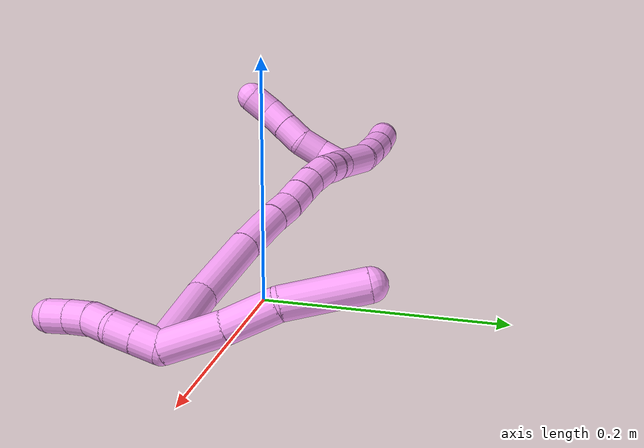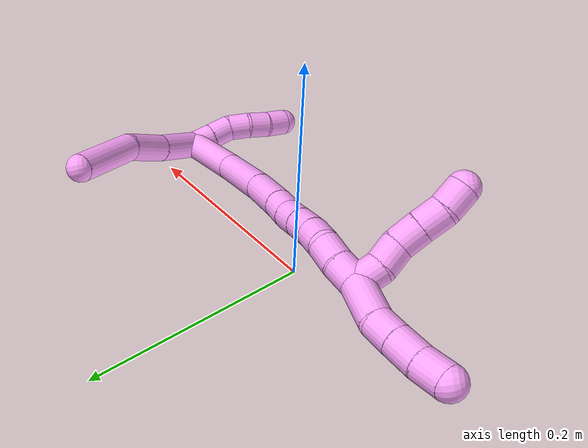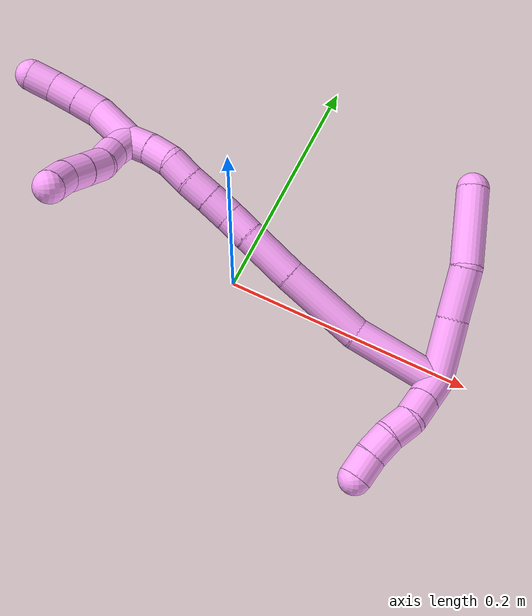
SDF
<sdf version="1.7">
 <world name="default">
  <model name="4">
   <static>0</static>
   <link name="4">
    <collision name="collision-cylinder-e_1_2_8">
     <pose>-0.002938 0.021737 -0.00907 -1.96611 -0.124096 0.185951</pose>
     <geometry><cylinder><radius>0.0125</radius><length>0.047472</length></cylinder></geometry>
     <surface>
      <friction><ode><mu>1.16</mu><mu2>1.16</mu2><slip1>0</slip1><slip2>0</slip2></ode></friction>
      <contact><ode><kp>1e+06</kp><kd>1</kd><max_vel>0</max_vel><min_depth>0.001</min_depth></ode></contact>
     </surface>
    </collision>
    <visual name="visual-cylinder-e_1_2_8">
     <pose>-0.002938 0.021737 -0.00907 -1.96611 -0.124096 0.185951</pose>
     <geometry><cylinder><radius>0.0125</radius><length>0.047472</length></cylinder></geometry>
     <material><ambient>1 0.65098 0.996078 1</ambient></material>
    </visual>
    <collision name="collision-cylinder-e_2_8_9">
     <pose>-0.006602 0.062542 -0.024783 -1.90598 -0.035925 0.05055</pose>
     <geometry><cylinder><radius>0.0125</radius><length>0.040409</length></cylinder></geometry>
     <surface>
      <friction><ode><mu>1.16</mu><mu2>1.16</mu2><slip1>0</slip1><slip2>0</slip2></ode></friction>
      <contact><ode><kp>1e+06</kp><kd>1</kd><max_vel>0</max_vel><min_depth>0.001</min_depth></ode></contact>
     </surface>
    </collision>
    <visual name="visual-cylinder-e_2_8_9">
     <pose>-0.006602 0.062542 -0.024783 -1.90598 -0.035925 0.05055</pose>
     <geometry><cylinder><radius>0.0125</radius><length>0.040409</length></cylinder></geometry>
     <material><ambient>1 0.65098 0.996078 1</ambient></material>
    </visual>
    <collision name="collision-cylinder-e_3_9_6">
     <pose>-0.018048 0.108828 -0.041861 -1.93694 -0.352412 0.506794</pose>
     <geometry><cylinder><radius>0.0125</radius><length>0.062119</length></cylinder></geometry>
     <surface>
      <friction><ode><mu>1.16</mu><mu2>1.16</mu2><slip1>0</slip1><slip2>0</slip2></ode></friction>
      <contact><ode><kp>1e+06</kp><kd>1</kd><max_vel>0</max_vel><min_depth>0.001</min_depth></ode></contact>
     </surface>
    </collision>
    <visual name="visual-cylinder-e_3_9_6">
     <pose>-0.018048 0.108828 -0.041861 -1.93694 -0.352412 0.506794</pose>
     <geometry><cylinder><radius>0.0125</radius><length>0.062119</length></cylinder></geometry>
     <material><ambient>1 0.65098 0.996078 1</ambient></material>
    </visual>
    <collision name="collision-cylinder-e_1_2_10">
     <pose>0.003215 -0.00487 0.008121 0.540165 0.327261 0.091355</pose>
     <geometry><cylinder><radius>0.0125</radius><length>0.02</length></cylinder></geometry>
     <surface>
      <friction><ode><mu>1.16</mu><mu2>1.16</mu2><slip1>0</slip1><slip2>0</slip2></ode></friction>
      <contact><ode><kp>1e+06</kp><kd>1</kd><max_vel>0</max_vel><min_depth>0.001</min_depth></ode></contact>
     </surface>
    </collision>
    <visual name="visual-cylinder-e_1_2_10">
     <pose>0.003215 -0.00487 0.008121 0.540165 0.327261 0.091355</pose>
     <geometry><cylinder><radius>0.0125</radius><length>0.02</length></cylinder></geometry>
     <material><ambient>1 0.65098 0.996078 1</ambient></material>
    </visual>
    <collision name="collision-cylinder-e_2_10_11">
     <pose>0.009706 -0.014674 0.024299 0.549577 0.333902 0.094947</pose>
     <geometry><cylinder><radius>0.0125</radius><length>0.02</length></cylinder></geometry>
     <surface>
      <friction><ode><mu>1.16</mu><mu2>1.16</mu2><slip1>0</slip1><slip2>0</slip2></ode></friction>
      <contact><ode><kp>1e+06</kp><kd>1</kd><max_vel>0</max_vel><min_depth>0.001</min_depth></ode></contact>
     </surface>
    </collision>
    <visual name="visual-cylinder-e_2_10_11">
     <pose>0.009706 -0.014674 0.024299 0.549577 0.333902 0.094947</pose>
     <geometry><cylinder><radius>0.0125</radius><length>0.02</length></cylinder></geometry>
     <material><ambient>1 0.65098 0.996078 1</ambient></material>
    </visual>
    <collision name="collision-cylinder-e_3_11_12">
     <pose>0.012972 -0.023961 0.041359 0.450223 -0.00115 -0.000263</pose>
     <geometry><cylinder><radius>0.0125</radius><length>0.02</length></cylinder></geometry>
     <surface>
      <friction><ode><mu>1.16</mu><mu2>1.16</mu2><slip1>0</slip1><slip2>0</slip2></ode></friction>
      <contact><ode><kp>1e+06</kp><kd>1</kd><max_vel>0</max_vel><min_depth>0.001</min_depth></ode></contact>
     </surface>
    </collision>
    <visual name="visual-cylinder-e_3_11_12">
     <pose>0.012972 -0.023961 0.041359 0.450223 -0.00115 -0.000263</pose>
     <geometry><cylinder><radius>0.0125</radius><length>0.02</length></cylinder></geometry>
     <material><ambient>1 0.65098 0.996078 1</ambient></material>
    </visual>
    <collision name="collision-cylinder-e_4_12_13">
     <pose>0.012694 -0.034541 0.058181 0.672693 -0.02667 -0.009325</pose>
     <geometry><cylinder><radius>0.0125</radius><length>0.02</length></cylinder></geometry>
     <surface>
      <friction><ode><mu>1.16</mu><mu2>1.16</mu2><slip1>0</slip1><slip2>0</slip2></ode></friction>
      <contact><ode><kp>1e+06</kp><kd>1</kd><max_vel>0</max_vel><min_depth>0.001</min_depth></ode></contact>
     </surface>
    </collision>
    <visual name="visual-cylinder-e_4_12_13">
     <pose>0.012694 -0.034541 0.058181 0.672693 -0.02667 -0.009325</pose>
     <geometry><cylinder><radius>0.0125</radius><length>0.02</length></cylinder></geometry>
     <material><ambient>1 0.65098 0.996078 1</ambient></material>
    </visual>
    <collision name="collision-cylinder-e_5_13_5">
     <pose>0.013264 -0.04773 0.073131 0.773271 0.08378 0.034126</pose>
     <geometry><cylinder><radius>0.0125</radius><length>0.02</length></cylinder></geometry>
     <surface>
      <friction><ode><mu>1.16</mu><mu2>1.16</mu2><slip1>0</slip1><slip2>0</slip2></ode></friction>
      <contact><ode><kp>1e+06</kp><kd>1</kd><max_vel>0</max_vel><min_depth>0.001</min_depth></ode></contact>
     </surface>
    </collision>
    <visual name="visual-cylinder-e_5_13_5">
     <pose>0.013264 -0.04773 0.073131 0.773271 0.08378 0.034126</pose>
     <geometry><cylinder><radius>0.0125</radius><length>0.02</length></cylinder></geometry>
     <material><ambient>1 0.65098 0.996078 1</ambient></material>
    </visual>
    <collision name="collision-cylinder-e_1_2_14">
     <pose>-0.019017 0.017296 0.023387 -0.6368 -0.579025 0.195745</pose>
     <geometry><cylinder><radius>0.0125</radius><length>0.069505</length></cylinder></geometry>
     <surface>
      <friction><ode><mu>1.16</mu><mu2>1.16</mu2><slip1>0</slip1><slip2>0</slip2></ode></friction>
      <contact><ode><kp>1e+06</kp><kd>1</kd><max_vel>0</max_vel><min_depth>0.001</min_depth></ode></contact>
     </surface>
    </collision>
    <visual name="visual-cylinder-e_1_2_14">
     <pose>-0.019017 0.017296 0.023387 -0.6368 -0.579025 0.195745</pose>
     <geometry><cylinder><radius>0.0125</radius><length>0.069505</length></cylinder></geometry>
     <material><ambient>1 0.65098 0.996078 1</ambient></material>
    </visual>
    <collision name="collision-cylinder-e_2_14_15">
     <pose>-0.053653 0.056471 0.065952 -0.851038 -0.492689 0.226941</pose>
     <geometry><cylinder><radius>0.0125</radius><length>0.066043</length></cylinder></geometry>
     <surface>
      <friction><ode><mu>1.16</mu><mu2>1.16</mu2><slip1>0</slip1><slip2>0</slip2></ode></friction>
      <contact><ode><kp>1e+06</kp><kd>1</kd><max_vel>0</max_vel><min_depth>0.001</min_depth></ode></contact>
     </surface>
    </collision>
    <visual name="visual-cylinder-e_2_14_15">
     <pose>-0.053653 0.056471 0.065952 -0.851038 -0.492689 0.226941</pose>
     <geometry><cylinder><radius>0.0125</radius><length>0.066043</length></cylinder></geometry>
     <material><ambient>1 0.65098 0.996078 1</ambient></material>
    </visual>
    <collision name="collision-cylinder-e_3_15_16">
     <pose>-0.079901 0.092921 0.096495 -0.908466 -0.521978 0.25936</pose>
     <geometry><cylinder><radius>0.0125</radius><length>0.042636</length></cylinder></geometry>
     <surface>
      <friction><ode><mu>1.16</mu><mu2>1.16</mu2><slip1>0</slip1><slip2>0</slip2></ode></friction>
      <contact><ode><kp>1e+06</kp><kd>1</kd><max_vel>0</max_vel><min_depth>0.001</min_depth></ode></contact>
     </surface>
    </collision>
    <visual name="visual-cylinder-e_3_15_16">
     <pose>-0.079901 0.092921 0.096495 -0.908466 -0.521978 0.25936</pose>
     <geometry><cylinder><radius>0.0125</radius><length>0.042636</length></cylinder></geometry>
     <material><ambient>1 0.65098 0.996078 1</ambient></material>
    </visual>
    <collision name="collision-cylinder-e_4_16_17">
     <pose>-0.096305 0.114453 0.113041 -0.930797 -0.587147 0.301332</pose>
     <geometry><cylinder><radius>0.0125</radius><length>0.020846</length></cylinder></geometry>
     <surface>
      <friction><ode><mu>1.16</mu><mu2>1.16</mu2><slip1>0</slip1><slip2>0</slip2></ode></friction>
      <contact><ode><kp>1e+06</kp><kd>1</kd><max_vel>0</max_vel><min_depth>0.001</min_depth></ode></contact>
     </surface>
    </collision>
    <visual name="visual-cylinder-e_4_16_17">
     <pose>-0.096305 0.114453 0.113041 -0.930797 -0.587147 0.301332</pose>
     <geometry><cylinder><radius>0.0125</radius><length>0.020846</length></cylinder></geometry>
     <material><ambient>1 0.65098 0.996078 1</ambient></material>
    </visual>
    <collision name="collision-cylinder-e_5_17_18">
     <pose>-0.106852 0.128308 0.124006 -0.872964 -0.487681 0.231083</pose>
     <geometry><cylinder><radius>0.0125</radius><length>0.020373</length></cylinder></geometry>
     <surface>
      <friction><ode><mu>1.16</mu><mu2>1.16</mu2><slip1>0</slip1><slip2>0</slip2></ode></friction>
      <contact><ode><kp>1e+06</kp><kd>1</kd><max_vel>0</max_vel><min_depth>0.001</min_depth></ode></contact>
     </surface>
    </collision>
    <visual name="visual-cylinder-e_5_17_18">
     <pose>-0.106852 0.128308 0.124006 -0.872964 -0.487681 0.231083</pose>
     <geometry><cylinder><radius>0.0125</radius><length>0.020373</length></cylinder></geometry>
     <material><ambient>1 0.65098 0.996078 1</ambient></material>
    </visual>
    <collision name="collision-cylinder-e_6_18_19">
     <pose>-0.116641 0.141694 0.135537 -0.845877 -0.524489 0.240473</pose>
     <geometry><cylinder><radius>0.0125</radius><length>0.020033</length></cylinder></geometry>
     <surface>
      <friction><ode><mu>1.16</mu><mu2>1.16</mu2><slip1>0</slip1><slip2>0</slip2></ode></friction>
      <contact><ode><kp>1e+06</kp><kd>1</kd><max_vel>0</max_vel><min_depth>0.001</min_depth></ode></contact>
     </surface>
    </collision>
    <visual name="visual-cylinder-e_6_18_19">
     <pose>-0.116641 0.141694 0.135537 -0.845877 -0.524489 0.240473</pose>
     <geometry><cylinder><radius>0.0125</radius><length>0.020033</length></cylinder></geometry>
     <material><ambient>1 0.65098 0.996078 1</ambient></material>
    </visual>
    <collision name="collision-cylinder-e_7_19_20">
     <pose>-0.127285 0.155159 0.146199 -0.957195 -0.583112 0.308929</pose>
     <geometry><cylinder><radius>0.0125</radius><length>0.02044</length></cylinder></geometry>
     <surface>
      <friction><ode><mu>1.16</mu><mu2>1.16</mu2><slip1>0</slip1><slip2>0</slip2></ode></friction>
      <contact><ode><kp>1e+06</kp><kd>1</kd><max_vel>0</max_vel><min_depth>0.001</min_depth></ode></contact>
     </surface>
    </collision>
    <visual name="visual-cylinder-e_7_19_20">
     <pose>-0.127285 0.155159 0.146199 -0.957195 -0.583112 0.308929</pose>
     <geometry><cylinder><radius>0.0125</radius><length>0.02044</length></cylinder></geometry>
     <material><ambient>1 0.65098 0.996078 1</ambient></material>
    </visual>
    <collision name="collision-cylinder-e_8_20_21">
     <pose>-0.140655 0.166302 0.155881 -0.718244 -0.88514 0.352138</pose>
     <geometry><cylinder><radius>0.0125</radius><length>0.020008</length></cylinder></geometry>
     <surface>
      <friction><ode><mu>1.16</mu><mu2>1.16</mu2><slip1>0</slip1><slip2>0</slip2></ode></friction>
      <contact><ode><kp>1e+06</kp><kd>1</kd><max_vel>0</max_vel><min_depth>0.001</min_depth></ode></contact>
     </surface>
    </collision>
    <visual name="visual-cylinder-e_8_20_21">
     <pose>-0.140655 0.166302 0.155881 -0.718244 -0.88514 0.352138</pose>
     <geometry><cylinder><radius>0.0125</radius><length>0.020008</length></cylinder></geometry>
     <material><ambient>1 0.65098 0.996078 1</ambient></material>
    </visual>
    <collision name="collision-cylinder-e_9_21_1">
     <pose>-0.15603 0.173533 0.166441 -0.486428 -0.861526 0.227069</pose>
     <geometry><cylinder><radius>0.0125</radius><length>0.020114</length></cylinder></geometry>
     <surface>
      <friction><ode><mu>1.16</mu><mu2>1.16</mu2><slip1>0</slip1><slip2>0</slip2></ode></friction>
      <contact><ode><kp>1e+06</kp><kd>1</kd><max_vel>0</max_vel><min_depth>0.001</min_depth></ode></contact>
     </surface>
    </collision>
    <visual name="visual-cylinder-e_9_21_1">
     <pose>-0.15603 0.173533 0.166441 -0.486428 -0.861526 0.227069</pose>
     <geometry><cylinder><radius>0.0125</radius><length>0.020114</length></cylinder></geometry>
     <material><ambient>1 0.65098 0.996078 1</ambient></material>
    </visual>
    <collision name="collision-cylinder-e_1_1_22">
     <pose>-0.159578 0.173298 0.180743 0.369494 0.420751 0.079768</pose>
     <geometry><cylinder><radius>0.0125</radius><length>0.02</length></cylinder></geometry>
     <surface>
      <friction><ode><mu>1.16</mu><mu2>1.16</mu2><slip1>0</slip1><slip2>0</slip2></ode></friction>
      <contact><ode><kp>1e+06</kp><kd>1</kd><max_vel>0</max_vel><min_depth>0.001</min_depth></ode></contact>
     </surface>
    </collision>
    <visual name="visual-cylinder-e_1_1_22">
     <pose>-0.159578 0.173298 0.180743 0.369494 0.420751 0.079768</pose>
     <geometry><cylinder><radius>0.0125</radius><length>0.02</length></cylinder></geometry>
     <material><ambient>1 0.65098 0.996078 1</ambient></material>
    </visual>
    <collision name="collision-cylinder-e_2_22_23">
     <pose>-0.148842 0.166978 0.196082 0.416883 0.727639 0.160729</pose>
     <geometry><cylinder><radius>0.0125</radius><length>0.02</length></cylinder></geometry>
     <surface>
      <friction><ode><mu>1.16</mu><mu2>1.16</mu2><slip1>0</slip1><slip2>0</slip2></ode></friction>
      <contact><ode><kp>1e+06</kp><kd>1</kd><max_vel>0</max_vel><min_depth>0.001</min_depth></ode></contact>
     </surface>
    </collision>
    <visual name="visual-cylinder-e_2_22_23">
     <pose>-0.148842 0.166978 0.196082 0.416883 0.727639 0.160729</pose>
     <geometry><cylinder><radius>0.0125</radius><length>0.02</length></cylinder></geometry>
     <material><ambient>1 0.65098 0.996078 1</ambient></material>
    </visual>
    <collision name="collision-cylinder-e_3_23_24">
     <pose>-0.137449 0.16297 0.21166 0.112022 0.494003 0.028274</pose>
     <geometry><cylinder><radius>0.0125</radius><length>0.02</length></cylinder></geometry>
     <surface>
      <friction><ode><mu>1.16</mu><mu2>1.16</mu2><slip1>0</slip1><slip2>0</slip2></ode></friction>
      <contact><ode><kp>1e+06</kp><kd>1</kd><max_vel>0</max_vel><min_depth>0.001</min_depth></ode></contact>
     </surface>
    </collision>
    <visual name="visual-cylinder-e_3_23_24">
     <pose>-0.137449 0.16297 0.21166 0.112022 0.494003 0.028274</pose>
     <geometry><cylinder><radius>0.0125</radius><length>0.02</length></cylinder></geometry>
     <material><ambient>1 0.65098 0.996078 1</ambient></material>
    </visual>
    <collision name="collision-cylinder-e_4_24_25">
     <pose>-0.128307 0.160979 0.229332 0.11233 0.455736 0.026075</pose>
     <geometry><cylinder><radius>0.0125</radius><length>0.02</length></cylinder></geometry>
     <surface>
      <friction><ode><mu>1.16</mu><mu2>1.16</mu2><slip1>0</slip1><slip2>0</slip2></ode></friction>
      <contact><ode><kp>1e+06</kp><kd>1</kd><max_vel>0</max_vel><min_depth>0.001</min_depth></ode></contact>
     </surface>
    </collision>
    <visual name="visual-cylinder-e_4_24_25">
     <pose>-0.128307 0.160979 0.229332 0.11233 0.455736 0.026075</pose>
     <geometry><cylinder><radius>0.0125</radius><length>0.02</length></cylinder></geometry>
     <material><ambient>1 0.65098 0.996078 1</ambient></material>
    </visual>
    <collision name="collision-cylinder-e_5_25_4">
     <pose>-0.117554 0.158094 0.245747 0.2457 0.688148 0.088429</pose>
     <geometry><cylinder><radius>0.0125</radius><length>0.02</length></cylinder></geometry>
     <surface>
      <friction><ode><mu>1.16</mu><mu2>1.16</mu2><slip1>0</slip1><slip2>0</slip2></ode></friction>
      <contact><ode><kp>1e+06</kp><kd>1</kd><max_vel>0</max_vel><min_depth>0.001</min_depth></ode></contact>
     </surface>
    </collision>
    <visual name="visual-cylinder-e_5_25_4">
     <pose>-0.117554 0.158094 0.245747 0.2457 0.688148 0.088429</pose>
     <geometry><cylinder><radius>0.0125</radius><length>0.02</length></cylinder></geometry>
     <material><ambient>1 0.65098 0.996078 1</ambient></material>
    </visual>
    <collision name="collision-cylinder-e_1_1_26">
     <pose>-0.177171 0.186431 0.178439 -1.00775 -0.859944 0.4953</pose>
     <geometry><cylinder><radius>0.0125</radius><length>0.035653</length></cylinder></geometry>
     <surface>
      <friction><ode><mu>1.16</mu><mu2>1.16</mu2><slip1>0</slip1><slip2>0</slip2></ode></friction>
      <contact><ode><kp>1e+06</kp><kd>1</kd><max_vel>0</max_vel><min_depth>0.001</min_depth></ode></contact>
     </surface>
    </collision>
    <visual name="visual-cylinder-e_1_1_26">
     <pose>-0.177171 0.186431 0.178439 -1.00775 -0.859944 0.4953</pose>
     <geometry><cylinder><radius>0.0125</radius><length>0.035653</length></cylinder></geometry>
     <material><ambient>1 0.65098 0.996078 1</ambient></material>
    </visual>
    <collision name="collision-cylinder-e_2_26_27">
     <pose>-0.197304 0.200962 0.19077 -0.654278 -0.709392 0.250038</pose>
     <geometry><cylinder><radius>0.0125</radius><length>0.020337</length></cylinder></geometry>
     <surface>
      <friction><ode><mu>1.16</mu><mu2>1.16</mu2><slip1>0</slip1><slip2>0</slip2></ode></friction>
      <contact><ode><kp>1e+06</kp><kd>1</kd><max_vel>0</max_vel><min_depth>0.001</min_depth></ode></contact>
     </surface>
    </collision>
    <visual name="visual-cylinder-e_2_26_27">
     <pose>-0.197304 0.200962 0.19077 -0.654278 -0.709392 0.250038</pose>
     <geometry><cylinder><radius>0.0125</radius><length>0.020337</length></cylinder></geometry>
     <material><ambient>1 0.65098 0.996078 1</ambient></material>
    </visual>
    <collision name="collision-cylinder-e_3_27_28">
     <pose>-0.211163 0.210679 0.203848 -0.625248 -0.700647 0.235119</pose>
     <geometry><cylinder><radius>0.0125</radius><length>0.022445</length></cylinder></geometry>
     <surface>
      <friction><ode><mu>1.16</mu><mu2>1.16</mu2><slip1>0</slip1><slip2>0</slip2></ode></friction>
      <contact><ode><kp>1e+06</kp><kd>1</kd><max_vel>0</max_vel><min_depth>0.001</min_depth></ode></contact>
     </surface>
    </collision>
    <visual name="visual-cylinder-e_3_27_28">
     <pose>-0.211163 0.210679 0.203848 -0.625248 -0.700647 0.235119</pose>
     <geometry><cylinder><radius>0.0125</radius><length>0.022445</length></cylinder></geometry>
     <material><ambient>1 0.65098 0.996078 1</ambient></material>
    </visual>
    <collision name="collision-cylinder-e_4_28_3">
     <pose>-0.224469 0.2205 0.218311 -0.568816 -0.598089 0.179761</pose>
     <geometry><cylinder><radius>0.0125</radius><length>0.021564</length></cylinder></geometry>
     <surface>
      <friction><ode><mu>1.16</mu><mu2>1.16</mu2><slip1>0</slip1><slip2>0</slip2></ode></friction>
      <contact><ode><kp>1e+06</kp><kd>1</kd><max_vel>0</max_vel><min_depth>0.001</min_depth></ode></contact>
     </surface>
    </collision>
    <visual name="visual-cylinder-e_4_28_3">
     <pose>-0.224469 0.2205 0.218311 -0.568816 -0.598089 0.179761</pose>
     <geometry><cylinder><radius>0.0125</radius><length>0.021564</length></cylinder></geometry>
     <material><ambient>1 0.65098 0.996078 1</ambient></material>
    </visual>
    <collision name="collision-sphere-3">
     <pose>-0.23054 0.225299 0.225819 0 -0 0</pose>
     <geometry><sphere><radius>0.0125</radius></sphere></geometry>
     <surface>
      <friction><ode><mu>1.16</mu><mu2>1.16</mu2><slip1>0</slip1><slip2>0</slip2></ode></friction>
      <contact><ode><kp>1e+06</kp><kd>1</kd><max_vel>0</max_vel><min_depth>0.001</min_depth></ode></contact>
     </surface>
    </collision>
    <visual name="visual-sphere-3">
     <pose>-0.23054 0.225299 0.225819 0 -0 0</pose>
     <geometry><sphere><radius>0.0125</radius></sphere></geometry>
     <material><ambient>1 0.65098 0.996078 1</ambient></material>
    </visual>
    <collision name="collision-sphere-28">
     <pose>-0.218398 0.2157 0.210804 0 -0 0</pose>
     <geometry><sphere><radius>0.0125</radius></sphere></geometry>
     <surface>
      <friction><ode><mu>1.16</mu><mu2>1.16</mu2><slip1>0</slip1><slip2>0</slip2></ode></friction>
      <contact><ode><kp>1e+06</kp><kd>1</kd><max_vel>0</max_vel><min_depth>0.001</min_depth></ode></contact>
     </surface>
    </collision>
    <visual name="visual-sphere-28">
     <pose>-0.218398 0.2157 0.210804 0 -0 0</pose>
     <geometry><sphere><radius>0.0125</radius></sphere></geometry>
     <material><ambient>1 0.65098 0.996078 1</ambient></material>
    </visual>
    <collision name="collision-sphere-27">
     <pose>-0.203928 0.205658 0.196892 0 -0 0</pose>
     <geometry><sphere><radius>0.0125</radius></sphere></geometry>
     <surface>
      <friction><ode><mu>1.16</mu><mu2>1.16</mu2><slip1>0</slip1><slip2>0</slip2></ode></friction>
      <contact><ode><kp>1e+06</kp><kd>1</kd><max_vel>0</max_vel><min_depth>0.001</min_depth></ode></contact>
     </surface>
    </collision>
    <visual name="visual-sphere-27">
     <pose>-0.203928 0.205658 0.196892 0 -0 0</pose>
     <geometry><sphere><radius>0.0125</radius></sphere></geometry>
     <material><ambient>1 0.65098 0.996078 1</ambient></material>
    </visual>
    <collision name="collision-sphere-26">
     <pose>-0.190681 0.196267 0.184648 0 -0 0</pose>
     <geometry><sphere><radius>0.0125</radius></sphere></geometry>
     <surface>
      <friction><ode><mu>1.16</mu><mu2>1.16</mu2><slip1>0</slip1><slip2>0</slip2></ode></friction>
      <contact><ode><kp>1e+06</kp><kd>1</kd><max_vel>0</max_vel><min_depth>0.001</min_depth></ode></contact>
     </surface>
    </collision>
    <visual name="visual-sphere-26">
     <pose>-0.190681 0.196267 0.184648 0 -0 0</pose>
     <geometry><sphere><radius>0.0125</radius></sphere></geometry>
     <material><ambient>1 0.65098 0.996078 1</ambient></material>
    </visual>
    <collision name="collision-sphere-4">
     <pose>-0.111203 0.156215 0.253239 0 -0 0</pose>
     <geometry><sphere><radius>0.0125</radius></sphere></geometry>
     <surface>
      <friction><ode><mu>1.16</mu><mu2>1.16</mu2><slip1>0</slip1><slip2>0</slip2></ode></friction>
      <contact><ode><kp>1e+06</kp><kd>1</kd><max_vel>0</max_vel><min_depth>0.001</min_depth></ode></contact>
     </surface>
    </collision>
    <visual name="visual-sphere-4">
     <pose>-0.111203 0.156215 0.253239 0 -0 0</pose>
     <geometry><sphere><radius>0.0125</radius></sphere></geometry>
     <material><ambient>1 0.65098 0.996078 1</ambient></material>
    </visual>
    <collision name="collision-sphere-25">
     <pose>-0.123905 0.159973 0.238254 0 -0 0</pose>
     <geometry><sphere><radius>0.0125</radius></sphere></geometry>
     <surface>
      <friction><ode><mu>1.16</mu><mu2>1.16</mu2><slip1>0</slip1><slip2>0</slip2></ode></friction>
      <contact><ode><kp>1e+06</kp><kd>1</kd><max_vel>0</max_vel><min_depth>0.001</min_depth></ode></contact>
     </surface>
    </collision>
    <visual name="visual-sphere-25">
     <pose>-0.123905 0.159973 0.238254 0 -0 0</pose>
     <geometry><sphere><radius>0.0125</radius></sphere></geometry>
     <material><ambient>1 0.65098 0.996078 1</ambient></material>
    </visual>
    <collision name="collision-sphere-24">
     <pose>-0.132708 0.161986 0.220409 0 -0 0</pose>
     <geometry><sphere><radius>0.0125</radius></sphere></geometry>
     <surface>
      <friction><ode><mu>1.16</mu><mu2>1.16</mu2><slip1>0</slip1><slip2>0</slip2></ode></friction>
      <contact><ode><kp>1e+06</kp><kd>1</kd><max_vel>0</max_vel><min_depth>0.001</min_depth></ode></contact>
     </surface>
    </collision>
    <visual name="visual-sphere-24">
     <pose>-0.132708 0.161986 0.220409 0 -0 0</pose>
     <geometry><sphere><radius>0.0125</radius></sphere></geometry>
     <material><ambient>1 0.65098 0.996078 1</ambient></material>
    </visual>
    <collision name="collision-sphere-23">
     <pose>-0.142191 0.163954 0.20291 0 -0 0</pose>
     <geometry><sphere><radius>0.0125</radius></sphere></geometry>
     <surface>
      <friction><ode><mu>1.16</mu><mu2>1.16</mu2><slip1>0</slip1><slip2>0</slip2></ode></friction>
      <contact><ode><kp>1e+06</kp><kd>1</kd><max_vel>0</max_vel><min_depth>0.001</min_depth></ode></contact>
     </surface>
    </collision>
    <visual name="visual-sphere-23">
     <pose>-0.142191 0.163954 0.20291 0 -0 0</pose>
     <geometry><sphere><radius>0.0125</radius></sphere></geometry>
     <material><ambient>1 0.65098 0.996078 1</ambient></material>
    </visual>
    <collision name="collision-sphere-22">
     <pose>-0.155493 0.170002 0.189254 0 -0 0</pose>
     <geometry><sphere><radius>0.0125</radius></sphere></geometry>
     <surface>
      <friction><ode><mu>1.16</mu><mu2>1.16</mu2><slip1>0</slip1><slip2>0</slip2></ode></friction>
      <contact><ode><kp>1e+06</kp><kd>1</kd><max_vel>0</max_vel><min_depth>0.001</min_depth></ode></contact>
     </surface>
    </collision>
    <visual name="visual-sphere-22">
     <pose>-0.155493 0.170002 0.189254 0 -0 0</pose>
     <geometry><sphere><radius>0.0125</radius></sphere></geometry>
     <material><ambient>1 0.65098 0.996078 1</ambient></material>
    </visual>
    <collision name="collision-sphere-1">
     <pose>-0.163662 0.176594 0.172231 0 -0 0</pose>
     <geometry><sphere><radius>0.0125</radius></sphere></geometry>
     <surface>
      <friction><ode><mu>1.16</mu><mu2>1.16</mu2><slip1>0</slip1><slip2>0</slip2></ode></friction>
      <contact><ode><kp>1e+06</kp><kd>1</kd><max_vel>0</max_vel><min_depth>0.001</min_depth></ode></contact>
     </surface>
    </collision>
    <visual name="visual-sphere-1">
     <pose>-0.163662 0.176594 0.172231 0 -0 0</pose>
     <geometry><sphere><radius>0.0125</radius></sphere></geometry>
     <material><ambient>1 0.65098 0.996078 1</ambient></material>
    </visual>
    <collision name="collision-sphere-21">
     <pose>-0.148399 0.170471 0.16065 0 -0 0</pose>
     <geometry><sphere><radius>0.0125</radius></sphere></geometry>
     <surface>
      <friction><ode><mu>1.16</mu><mu2>1.16</mu2><slip1>0</slip1><slip2>0</slip2></ode></friction>
      <contact><ode><kp>1e+06</kp><kd>1</kd><max_vel>0</max_vel><min_depth>0.001</min_depth></ode></contact>
     </surface>
    </collision>
    <visual name="visual-sphere-21">
     <pose>-0.148399 0.170471 0.16065 0 -0 0</pose>
     <geometry><sphere><radius>0.0125</radius></sphere></geometry>
     <material><ambient>1 0.65098 0.996078 1</ambient></material>
    </visual>
    <collision name="collision-sphere-11">
     <pose>0.012984 -0.019609 0.032355 0 -0 0</pose>
     <geometry><sphere><radius>0.0125</radius></sphere></geometry>
     <surface>
      <friction><ode><mu>1.16</mu><mu2>1.16</mu2><slip1>0</slip1><slip2>0</slip2></ode></friction>
      <contact><ode><kp>1e+06</kp><kd>1</kd><max_vel>0</max_vel><min_depth>0.001</min_depth></ode></contact>
     </surface>
    </collision>
    <visual name="visual-sphere-11">
     <pose>0.012984 -0.019609 0.032355 0 -0 0</pose>
     <geometry><sphere><radius>0.0125</radius></sphere></geometry>
     <material><ambient>1 0.65098 0.996078 1</ambient></material>
    </visual>
    <collision name="collision-sphere-10">
     <pose>0.006429 -0.00974 0.016242 0 -0 0</pose>
     <geometry><sphere><radius>0.0125</radius></sphere></geometry>
     <surface>
      <friction><ode><mu>1.16</mu><mu2>1.16</mu2><slip1>0</slip1><slip2>0</slip2></ode></friction>
      <contact><ode><kp>1e+06</kp><kd>1</kd><max_vel>0</max_vel><min_depth>0.001</min_depth></ode></contact>
     </surface>
    </collision>
    <visual name="visual-sphere-10">
     <pose>0.006429 -0.00974 0.016242 0 -0 0</pose>
     <geometry><sphere><radius>0.0125</radius></sphere></geometry>
     <material><ambient>1 0.65098 0.996078 1</ambient></material>
    </visual>
    <collision name="collision-sphere-6">
     <pose>-0.028769 0.136046 -0.052297 0 -0 0</pose>
     <geometry><sphere><radius>0.0125</radius></sphere></geometry>
     <surface>
      <friction><ode><mu>1.16</mu><mu2>1.16</mu2><slip1>0</slip1><slip2>0</slip2></ode></friction>
      <contact><ode><kp>1e+06</kp><kd>1</kd><max_vel>0</max_vel><min_depth>0.001</min_depth></ode></contact>
     </surface>
    </collision>
    <visual name="visual-sphere-6">
     <pose>-0.028769 0.136046 -0.052297 0 -0 0</pose>
     <geometry><sphere><radius>0.0125</radius></sphere></geometry>
     <material><ambient>1 0.65098 0.996078 1</ambient></material>
    </visual>
    <collision name="collision-sphere-9">
     <pose>-0.007327 0.081609 -0.031425 0 -0 0</pose>
     <geometry><sphere><radius>0.0125</radius></sphere></geometry>
     <surface>
      <friction><ode><mu>1.16</mu><mu2>1.16</mu2><slip1>0</slip1><slip2>0</slip2></ode></friction>
      <contact><ode><kp>1e+06</kp><kd>1</kd><max_vel>0</max_vel><min_depth>0.001</min_depth></ode></contact>
     </surface>
    </collision>
    <visual name="visual-sphere-9">
     <pose>-0.007327 0.081609 -0.031425 0 -0 0</pose>
     <geometry><sphere><radius>0.0125</radius></sphere></geometry>
     <material><ambient>1 0.65098 0.996078 1</ambient></material>
    </visual>
    <collision name="collision-sphere-2">
     <geometry><sphere><radius>0.0125</radius></sphere></geometry>
     <surface>
      <friction><ode><mu>1.16</mu><mu2>1.16</mu2><slip1>0</slip1><slip2>0</slip2></ode></friction>
      <contact><ode><kp>1e+06</kp><kd>1</kd><max_vel>0</max_vel><min_depth>0.001</min_depth></ode></contact>
     </surface>
    </collision>
    <visual name="visual-sphere-2">
     <geometry><sphere><radius>0.0125</radius></sphere></geometry>
     <material><ambient>1 0.65098 0.996078 1</ambient></material>
    </visual>
    <collision name="collision-sphere-19">
     <pose>-0.121657 0.148184 0.141286 0 -0 0</pose>
     <geometry><sphere><radius>0.0125</radius></sphere></geometry>
     <surface>
      <friction><ode><mu>1.16</mu><mu2>1.16</mu2><slip1>0</slip1><slip2>0</slip2></ode></friction>
      <contact><ode><kp>1e+06</kp><kd>1</kd><max_vel>0</max_vel><min_depth>0.001</min_depth></ode></contact>
     </surface>
    </collision>
    <visual name="visual-sphere-19">
     <pose>-0.121657 0.148184 0.141286 0 -0 0</pose>
     <geometry><sphere><radius>0.0125</radius></sphere></geometry>
     <material><ambient>1 0.65098 0.996078 1</ambient></material>
    </visual>
    <collision name="collision-sphere-8">
     <pose>-0.005876 0.043474 -0.018141 0 -0 0</pose>
     <geometry><sphere><radius>0.0125</radius></sphere></geometry>
     <surface>
      <friction><ode><mu>1.16</mu><mu2>1.16</mu2><slip1>0</slip1><slip2>0</slip2></ode></friction>
      <contact><ode><kp>1e+06</kp><kd>1</kd><max_vel>0</max_vel><min_depth>0.001</min_depth></ode></contact>
     </surface>
    </collision>
    <visual name="visual-sphere-8">
     <pose>-0.005876 0.043474 -0.018141 0 -0 0</pose>
     <geometry><sphere><radius>0.0125</radius></sphere></geometry>
     <material><ambient>1 0.65098 0.996078 1</ambient></material>
    </visual>
    <collision name="collision-sphere-12">
     <pose>0.012961 -0.028313 0.050362 0 -0 0</pose>
     <geometry><sphere><radius>0.0125</radius></sphere></geometry>
     <surface>
      <friction><ode><mu>1.16</mu><mu2>1.16</mu2><slip1>0</slip1><slip2>0</slip2></ode></friction>
      <contact><ode><kp>1e+06</kp><kd>1</kd><max_vel>0</max_vel><min_depth>0.001</min_depth></ode></contact>
     </surface>
    </collision>
    <visual name="visual-sphere-12">
     <pose>0.012961 -0.028313 0.050362 0 -0 0</pose>
     <geometry><sphere><radius>0.0125</radius></sphere></geometry>
     <material><ambient>1 0.65098 0.996078 1</ambient></material>
    </visual>
    <collision name="collision-sphere-13">
     <pose>0.012427 -0.04077 0.065999 0 -0 0</pose>
     <geometry><sphere><radius>0.0125</radius></sphere></geometry>
     <surface>
      <friction><ode><mu>1.16</mu><mu2>1.16</mu2><slip1>0</slip1><slip2>0</slip2></ode></friction>
      <contact><ode><kp>1e+06</kp><kd>1</kd><max_vel>0</max_vel><min_depth>0.001</min_depth></ode></contact>
     </surface>
    </collision>
    <visual name="visual-sphere-13">
     <pose>0.012427 -0.04077 0.065999 0 -0 0</pose>
     <geometry><sphere><radius>0.0125</radius></sphere></geometry>
     <material><ambient>1 0.65098 0.996078 1</ambient></material>
    </visual>
    <collision name="collision-sphere-5">
     <pose>0.014101 -0.054691 0.080262 0 -0 0</pose>
     <geometry><sphere><radius>0.0125</radius></sphere></geometry>
     <surface>
      <friction><ode><mu>1.16</mu><mu2>1.16</mu2><slip1>0</slip1><slip2>0</slip2></ode></friction>
      <contact><ode><kp>1e+06</kp><kd>1</kd><max_vel>0</max_vel><min_depth>0.001</min_depth></ode></contact>
     </surface>
    </collision>
    <visual name="visual-sphere-5">
     <pose>0.014101 -0.054691 0.080262 0 -0 0</pose>
     <geometry><sphere><radius>0.0125</radius></sphere></geometry>
     <material><ambient>1 0.65098 0.996078 1</ambient></material>
    </visual>
    <collision name="collision-sphere-14">
     <pose>-0.038034 0.034593 0.046773 0 -0 0</pose>
     <geometry><sphere><radius>0.0125</radius></sphere></geometry>
     <surface>
      <friction><ode><mu>1.16</mu><mu2>1.16</mu2><slip1>0</slip1><slip2>0</slip2></ode></friction>
      <contact><ode><kp>1e+06</kp><kd>1</kd><max_vel>0</max_vel><min_depth>0.001</min_depth></ode></contact>
     </surface>
    </collision>
    <visual name="visual-sphere-14">
     <pose>-0.038034 0.034593 0.046773 0 -0 0</pose>
     <geometry><sphere><radius>0.0125</radius></sphere></geometry>
     <material><ambient>1 0.65098 0.996078 1</ambient></material>
    </visual>
    <collision name="collision-sphere-15">
     <pose>-0.069272 0.078349 0.085131 0 -0 0</pose>
     <geometry><sphere><radius>0.0125</radius></sphere></geometry>
     <surface>
      <friction><ode><mu>1.16</mu><mu2>1.16</mu2><slip1>0</slip1><slip2>0</slip2></ode></friction>
      <contact><ode><kp>1e+06</kp><kd>1</kd><max_vel>0</max_vel><min_depth>0.001</min_depth></ode></contact>
     </surface>
    </collision>
    <visual name="visual-sphere-15">
     <pose>-0.069272 0.078349 0.085131 0 -0 0</pose>
     <geometry><sphere><radius>0.0125</radius></sphere></geometry>
     <material><ambient>1 0.65098 0.996078 1</ambient></material>
    </visual>
    <collision name="collision-sphere-16">
     <pose>-0.09053 0.107493 0.107859 0 -0 0</pose>
     <geometry><sphere><radius>0.0125</radius></sphere></geometry>
     <surface>
      <friction><ode><mu>1.16</mu><mu2>1.16</mu2><slip1>0</slip1><slip2>0</slip2></ode></friction>
      <contact><ode><kp>1e+06</kp><kd>1</kd><max_vel>0</max_vel><min_depth>0.001</min_depth></ode></contact>
     </surface>
    </collision>
    <visual name="visual-sphere-16">
     <pose>-0.09053 0.107493 0.107859 0 -0 0</pose>
     <geometry><sphere><radius>0.0125</radius></sphere></geometry>
     <material><ambient>1 0.65098 0.996078 1</ambient></material>
    </visual>
    <collision name="collision-sphere-17">
     <pose>-0.102079 0.121413 0.118223 0 -0 0</pose>
     <geometry><sphere><radius>0.0125</radius></sphere></geometry>
     <surface>
      <friction><ode><mu>1.16</mu><mu2>1.16</mu2><slip1>0</slip1><slip2>0</slip2></ode></friction>
      <contact><ode><kp>1e+06</kp><kd>1</kd><max_vel>0</max_vel><min_depth>0.001</min_depth></ode></contact>
     </surface>
    </collision>
    <visual name="visual-sphere-17">
     <pose>-0.102079 0.121413 0.118223 0 -0 0</pose>
     <geometry><sphere><radius>0.0125</radius></sphere></geometry>
     <material><ambient>1 0.65098 0.996078 1</ambient></material>
    </visual>
    <collision name="collision-sphere-18">
     <pose>-0.111625 0.135203 0.129788 0 -0 0</pose>
     <geometry><sphere><radius>0.0125</radius></sphere></geometry>
     <surface>
      <friction><ode><mu>1.16</mu><mu2>1.16</mu2><slip1>0</slip1><slip2>0</slip2></ode></friction>
      <contact><ode><kp>1e+06</kp><kd>1</kd><max_vel>0</max_vel><min_depth>0.001</min_depth></ode></contact>
     </surface>
    </collision>
    <visual name="visual-sphere-18">
     <pose>-0.111625 0.135203 0.129788 0 -0 0</pose>
     <geometry><sphere><radius>0.0125</radius></sphere></geometry>
     <material><ambient>1 0.65098 0.996078 1</ambient></material>
    </visual>
    <collision name="collision-sphere-20">
     <pose>-0.132912 0.162134 0.151111 0 -0 0</pose>
     <geometry><sphere><radius>0.0125</radius></sphere></geometry>
     <surface>
      <friction><ode><mu>1.16</mu><mu2>1.16</mu2><slip1>0</slip1><slip2>0</slip2></ode></friction>
      <contact><ode><kp>1e+06</kp><kd>1</kd><max_vel>0</max_vel><min_depth>0.001</min_depth></ode></contact>
     </surface>
    </collision>
    <visual name="visual-sphere-20">
     <pose>-0.132912 0.162134 0.151111 0 -0 0</pose>
     <geometry><sphere><radius>0.0125</radius></sphere></geometry>
     <material><ambient>1 0.65098 0.996078 1</ambient></material>
    </visual>
    <inertial>
     <pose>-0.076776 0.094919 0.090685 0 -0 0</pose>
     <mass>0.75</mass>
     <inertia><ixx>0.000132</ixx><ixy>0</ixy><ixz>0</ixz><iyy>0.000122</iyy><iyz>0</iyz><izz>-3e-06</izz></inertia>
    </inertial>
   </link>
   <pose>0.179014 -0.017234 0.032778 1.06781 -0.774945 -0.416983</pose>
  </model>
 </world>
</sdf>
